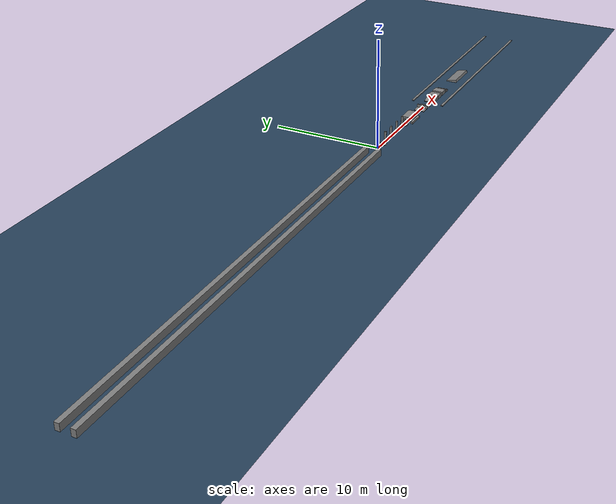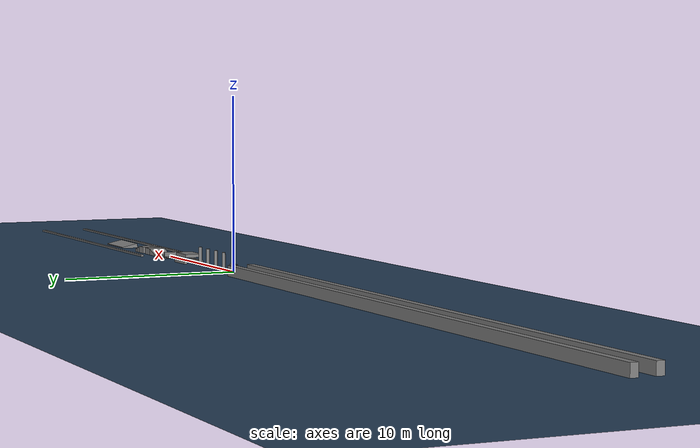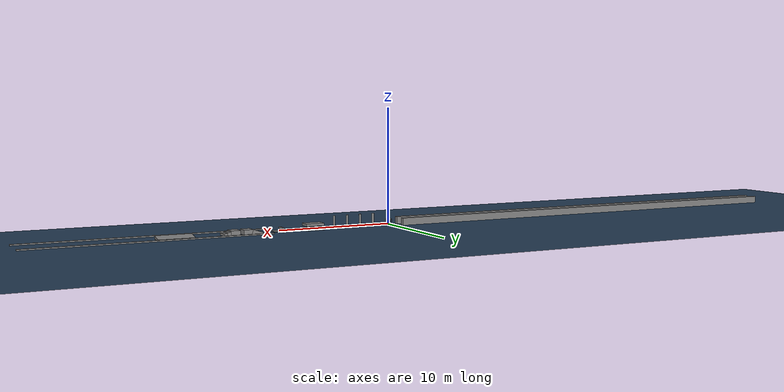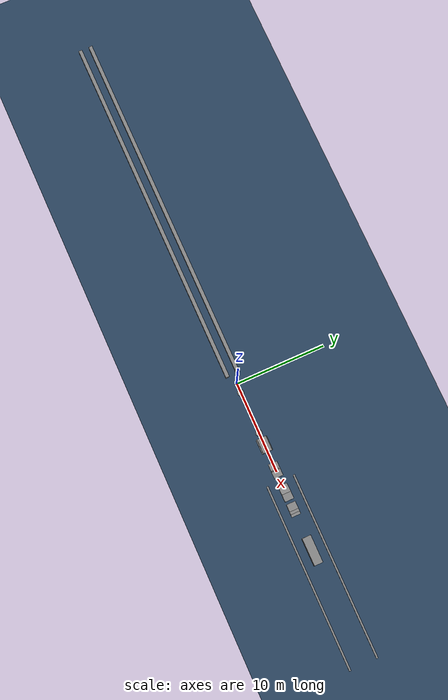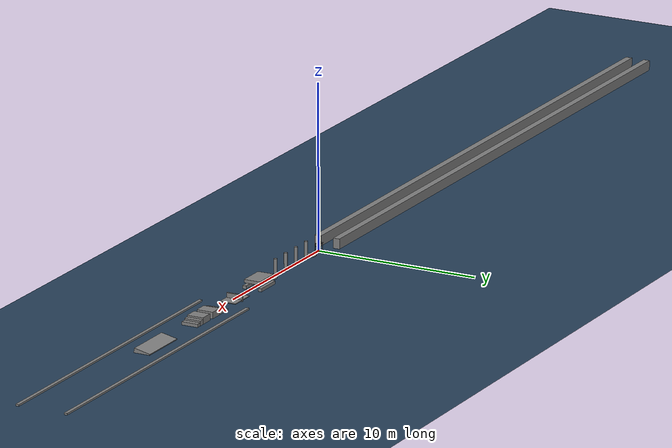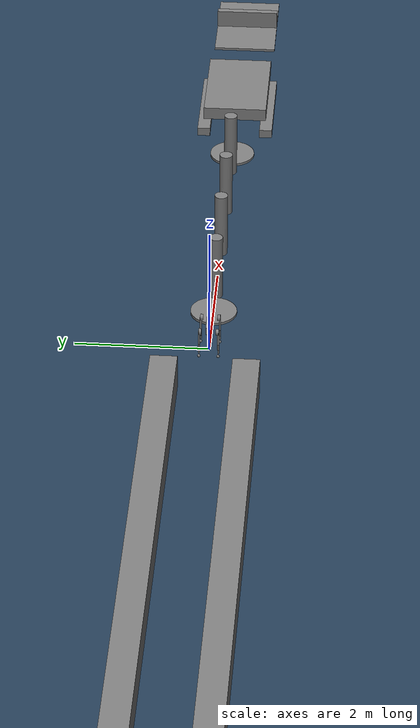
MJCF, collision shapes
<mujoco model="go2 scene">
  <include file="go2.xml"/>

  <statistic center="0 0 0.1" extent="0.8"/>

  <visual>
    <headlight diffuse="0.6 0.6 0.6" ambient="0.3 0.3 0.3" specular="0 0 0"/>
    <rgba haze="0.15 0.25 0.35 1"/>
    <global azimuth="-130" elevation="-20"/>
  </visual>

  <asset>
    <texture type="skybox" builtin="gradient" rgb1="0.3 0.5 0.7" rgb2="0 0 0" width="512" height="3072"/>
    <texture type="2d" name="groundplane" builtin="checker" mark="edge" rgb1="0.2 0.3 0.4" rgb2="0.1 0.2 0.3"
      markrgb="0.8 0.8 0.8" width="300" height="300"/>
    <material name="groundplane" texture="groundplane" texuniform="true" texrepeat="5 5" reflectance="0.2"/>

  </asset>

  <worldbody>
    <light pos="0 0 1.5" dir="0 0 -1" directional="true"/>
    <geom name="floor" size="0 0 0.05" type="plane" material="groundplane"/>
    <!-- 场地 -->
    <geom pos="-21 0.6 0.04" type="box"  size="20 0.2 0.5" quat="1.0 0 0 0"/>
    <geom pos="-21 -0.6 0.04" type="box"  size="20 0.2 0.5" quat="1.0 0 0 0"/>
    <geom pos="21 1.5 0.04" type="box"  size="10 0.1 0.05" quat="1.0 0 0 0"/>
    <geom pos="21 -1.5 0.04" type="box"  size="10 0.1 0.05" quat="1.0 0 0 0"/>
    <!-- 竖杆 -->
    <geom pos="1 0 0.02" type="cylinder"  size="0.35 0.02" quat="1.0 0 0 0"/>
    <geom pos="1.5 0 0.02" type="cylinder"  size="0.1 1." quat="1.0 0 0 0"/>
    <geom pos="2.7 0 0.02" type="cylinder"  size="0.1 1." quat="1.0 0 0 0"/>
    <geom pos="3.9 0 0.02" type="cylinder"  size="0.1 1." quat="1.0 0 0 0"/>
    <geom pos="5.1 0 0.02" type="cylinder"  size="0.1 1." quat="1.0 0 0 0"/>
    <geom pos="5.6 0 0.02" type="cylinder"  size="0.35 0.02" quat="1.0 0 0 0"/>
    <!-- 匍匐架 -->
    <geom pos="7 0.5 0.02" type="box"  size="0.8 0.1 0.1" quat="1.0 0 0 0"/>
    <geom pos="7 0 0.4" type="box"  size="0.8 0.5 0.1" quat="1.0 0 0 0"/>
    <geom pos="7 -0.5 0.02" type="box"  size="0.8 0.1 0.1" quat="1.0 0 0 0"/>
    <!-- 高墙 -->
    <geom pos="9.8 0 0.02" type="box"  size="0.8 0.5 0.02" quat="1.0 0 0 0"/>
    <geom pos="9.8 0 0.02" type="box"  size="0.05 0.5 0.3" quat="1.0 0 0 0"/>
    <!-- 断桥 -->
    <geom pos="12. 0 -0.025" type="box"  size="0.5 0.5 0.2" quat="0.9848 0 -0.1604 0"/>
    <geom pos="12.8 0 0.02" type="box"  size="0.4 0.5 0.3" quat="1.0 0 0 0"/>
    <geom pos="13.9 0 0.02" type="box"  size="0.4 0.5 0.3" quat="1.0 0 0 0"/>
    <geom pos="14.45 0 0.02" type="box"  size="0.15 0.5 0.2" quat="1.0 0 0 0"/>
    <geom pos="14.75 0 0.02" type="box"  size="0.15 0.5 0.1" quat="1.0 0 0 0"/>

    <geom pos="18.75 0.01 -0.07" type="box"  size="1.5 0.5 0.17" quat="0.9945 -0.1045 0 0"/>
  </worldbody>
</mujoco>

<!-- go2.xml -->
<mujoco model="go2">
  <compiler angle="radian" meshdir="assets" autolimits="true" />

  <option cone="elliptic" impratio="100" />

  <default>
    <default class="go2">
      <geom friction="0.4" margin="0.001" condim="1"/>
      <joint axis="0 1 0" damping="0.1" armature="0.01" frictionloss="0.2"/>
      <motor ctrlrange="-23.7 23.7"/>
      <default class="abduction">
        <joint axis="1 0 0" range="-1.0472 1.0472"/>
      </default>
      <default class="hip">
        <default class="front_hip">
          <joint range="-1.5708 3.4907"/>
        </default>
        <default class="back_hip">
          <joint range="-0.5236 4.5379"/>
        </default>
      </default>
      <default class="knee">
        <joint range="-2.7227 -0.83776"/>
        <motor ctrlrange="-45.43 45.43"/>
      </default>
      <default class="visual">
        <geom type="mesh" contype="0" conaffinity="0" group="2"/>
      </default>
      <default class="collision">
        <geom group="3"/>
        <default class="foot">
          <geom size="0.022" pos="-0.002 0 -0.213" priority="1" condim="6"
            friction="0.4 0.02 0.01"/>
        </default>
      </default>
    </default>
  </default>

  <asset>
    <material name="metal" rgba=".9 .95 .95 1" />
    <material name="black" rgba="0 0 0 1" />
    <material name="white" rgba="1 1 1 1" />
    <material name="gray" rgba="0.671705 0.692426 0.774270 1" />

    <mesh file="base_0.obj" />
    <mesh file="base_1.obj" />
    <mesh file="base_2.obj" />
    <mesh file="base_3.obj" />
    <mesh file="base_4.obj" />
    <mesh file="hip_0.obj" />
    <mesh file="hip_1.obj" />
    <mesh file="thigh_0.obj" />
    <mesh file="thigh_1.obj" />
    <mesh file="thigh_mirror_0.obj" />
    <mesh file="thigh_mirror_1.obj" />
    <mesh file="calf_0.obj" />
    <mesh file="calf_1.obj" />
    <mesh file="calf_mirror_0.obj" />
    <mesh file="calf_mirror_1.obj" />
    <mesh file="foot.obj" />
  </asset>

  <worldbody>
    <body name="base_link" pos="0 0 0.445" childclass="go2">
      <inertial pos="0.021112 0 -0.005366" quat="-0.000543471 0.713435 -0.00173769 0.700719"
        mass="3.921"
        diaginertia="0.107027 0.0980771 0.0244531" />
      <freejoint />
      <geom mesh="base_0" material="black" class="visual" />
      <geom mesh="base_1" material="black" class="visual" />
      <geom mesh="base_2" material="black" class="visual" />
      <geom mesh="base_3" material="white" class="visual" />
      <geom mesh="base_4" material="gray" class="visual" />
      <geom size="0.1881 0.04675 0.057" type="box" class="collision" />
      <geom size="0.05 0.045" pos="0.285 0 0.01" type="cylinder" class="collision" />
      <geom size="0.047" pos="0.293 0 -0.06" class="collision" />
      <site name='imu' size='0.01' pos='0.0 0 0.0'/>
      <body name="FL_hip" pos="0.1934 0.0465 0">
        <inertial pos="-0.0054 0.00194 -0.000105" quat="0.497014 0.499245 0.505462 0.498237"
          mass="0.678"
          diaginertia="0.00088403 0.000596003 0.000479967" />
        <joint name="FL_hip_joint" class="abduction" />
        <geom mesh="hip_0" material="metal" class="visual" />
        <geom mesh="hip_1" material="gray" class="visual" />
        <geom size="0.046 0.02" pos="0 0.08 0" quat="1 1 0 0" type="cylinder" class="collision" />
        <body name="FL_thigh" pos="0 0.0955 0">
          <inertial pos="-0.00374 -0.0223 -0.0327" quat="0.829533 0.0847635 -0.0200632 0.551623"
            mass="1.152"
            diaginertia="0.00594973 0.00584149 0.000878787" />
          <joint name="FL_thigh_joint" class="front_hip" />
          <geom mesh="thigh_0" material="metal" class="visual" />
          <geom mesh="thigh_1" material="gray" class="visual" />
          <geom size="0.1065 0.01225 0.017" pos="0 0 -0.1065" quat="0.707107 0 0.707107 0"
            type="box" class="collision" />
          <body name="FL_calf" pos="0 0 -0.213">
            <inertial pos="0.00629595 -0.000622121 -0.141417"
              quat="0.710672 0.00154099 -0.00450087 0.703508"
              mass="0.241352" diaginertia="0.0014901 0.00146356 5.31397e-05" />
            <joint name="FL_calf_joint" class="knee" />
            <geom mesh="calf_0" material="gray" class="visual" />
            <geom mesh="calf_1" material="black" class="visual" />
            <geom size="0.012 0.06" pos="0.008 0 -0.06" quat="0.994493 0 -0.104807 0"
              type="cylinder" class="collision" />
            <geom size="0.011 0.0325" pos="0.02 0 -0.148" quat="0.999688 0 0.0249974 0"
              type="cylinder" class="collision" />
            <geom pos="0 0 -0.213" mesh="foot" class="visual" material="black" />
            <geom name="FL" class="foot" />
            <body name="FL_foot" pos="0 0 -0.213" />
          </body>
        </body>
      </body>
      <body name="FR_hip" pos="0.1934 -0.0465 0">
        <inertial pos="-0.0054 -0.00194 -0.000105" quat="0.498237 0.505462 0.499245 0.497014"
          mass="0.678"
          diaginertia="0.00088403 0.000596003 0.000479967" />
        <joint name="FR_hip_joint" class="abduction" />
        <geom mesh="hip_0" material="metal" class="visual" quat="4.63268e-05 1 0 0" />
        <geom mesh="hip_1" material="gray" class="visual" quat="4.63268e-05 1 0 0" />
        <geom size="0.046 0.02" pos="0 -0.08 0" quat="0.707107 0.707107 0 0" type="cylinder"
          class="collision" />
        <body name="FR_thigh" pos="0 -0.0955 0">
          <inertial pos="-0.00374 0.0223 -0.0327" quat="0.551623 -0.0200632 0.0847635 0.829533"
            mass="1.152"
            diaginertia="0.00594973 0.00584149 0.000878787" />
          <joint name="FR_thigh_joint" class="front_hip" />
          <geom mesh="thigh_mirror_0" material="metal" class="visual" />
          <geom mesh="thigh_mirror_1" material="gray" class="visual" />
          <geom size="0.1065 0.01225 0.017" pos="0 0 -0.1065" quat="0.707107 0 0.707107 0"
            type="box" class="collision" />
          <body name="FR_calf" pos="0 0 -0.213">
            <inertial pos="0.00629595 0.000622121 -0.141417"
              quat="0.703508 -0.00450087 0.00154099 0.710672"
              mass="0.241352" diaginertia="0.0014901 0.00146356 5.31397e-05" />
            <joint name="FR_calf_joint" class="knee" />
            <geom mesh="calf_mirror_0" material="gray" class="visual" />
            <geom mesh="calf_mirror_1" material="black" class="visual" />
            <geom size="0.013 0.06" pos="0.01 0 -0.06" quat="0.995004 0 -0.0998334 0"
              type="cylinder" class="collision" />
            <geom size="0.011 0.0325" pos="0.02 0 -0.148" quat="0.999688 0 0.0249974 0"
              type="cylinder" class="collision" />
            <geom pos="0 0 -0.213" mesh="foot" class="visual" material="black" />
            <geom name="FR" class="foot" />
            <body name="FR_foot" pos="0 0 -0.213" />
          </body>
        </body>
      </body>
      <body name="RL_hip" pos="-0.1934 0.0465 0">
        <inertial pos="0.0054 0.00194 -0.000105" quat="0.505462 0.498237 0.497014 0.499245"
          mass="0.678"
          diaginertia="0.00088403 0.000596003 0.000479967" />
        <joint name="RL_hip_joint" class="abduction" />
        <geom mesh="hip_0" material="metal" class="visual" quat="4.63268e-05 0 1 0" />
        <geom mesh="hip_1" material="gray" class="visual" quat="4.63268e-05 0 1 0" />
        <geom size="0.046 0.02" pos="0 0.08 0" quat="0.707107 0.707107 0 0" type="cylinder"
          class="collision" />
        <body name="RL_thigh" pos="0 0.0955 0">
          <inertial pos="-0.00374 -0.0223 -0.0327" quat="0.829533 0.0847635 -0.0200632 0.551623"
            mass="1.152"
            diaginertia="0.00594973 0.00584149 0.000878787" />
          <joint name="RL_thigh_joint" class="back_hip" />
          <geom mesh="thigh_0" material="metal" class="visual" />
          <geom mesh="thigh_1" material="gray" class="visual" />
          <geom size="0.1065 0.01225 0.017" pos="0 0 -0.1065" quat="0.707107 0 0.707107 0"
            type="box" class="collision" />
          <body name="RL_calf" pos="0 0 -0.213">
            <inertial pos="0.00629595 -0.000622121 -0.141417"
              quat="0.710672 0.00154099 -0.00450087 0.703508"
              mass="0.241352" diaginertia="0.0014901 0.00146356 5.31397e-05" />
            <joint name="RL_calf_joint" class="knee" />
            <geom mesh="calf_0" material="gray" class="visual" />
            <geom mesh="calf_1" material="black" class="visual" />
            <geom size="0.013 0.06" pos="0.01 0 -0.06" quat="0.995004 0 -0.0998334 0"
              type="cylinder" class="collision" />
            <geom size="0.011 0.0325" pos="0.02 0 -0.148" quat="0.999688 0 0.0249974 0"
              type="cylinder" class="collision" />
            <geom pos="0 0 -0.213" mesh="foot" class="visual" material="black" />
            <geom name="RL" class="foot" />
            <body name="RL_foot" pos="0 0 -0.213" />
          </body>
        </body>
      </body>
       <body name="RR_hip" pos="-0.1934 -0.0465 0">
        <inertial pos="0.0054 -0.00194 -0.000105" quat="0.499245 0.497014 0.498237 0.505462"
          mass="0.678"
          diaginertia="0.00088403 0.000596003 0.000479967" />
        <joint name="RR_hip_joint" class="abduction" />
        <geom mesh="hip_0" material="metal" class="visual"
          quat="2.14617e-09 4.63268e-05 4.63268e-05 -1" />
        <geom mesh="hip_1" material="gray" class="visual"
          quat="2.14617e-09 4.63268e-05 4.63268e-05 -1" />
        <geom size="0.046 0.02" pos="0 -0.08 0" quat="0.707107 0.707107 0 0" type="cylinder"
          class="collision" />
        <body name="RR_thigh" pos="0 -0.0955 0">
          <inertial pos="-0.00374 0.0223 -0.0327" quat="0.551623 -0.0200632 0.0847635 0.829533"
            mass="1.152"
            diaginertia="0.00594973 0.00584149 0.000878787" />
          <joint name="RR_thigh_joint" class="back_hip" />
          <geom mesh="thigh_mirror_0" material="metal" class="visual" />
          <geom mesh="thigh_mirror_1" material="gray" class="visual" />
          <geom size="0.1065 0.01225 0.017" pos="0 0 -0.1065" quat="0.707107 0 0.707107 0"
            type="box" class="collision" />
          <body name="RR_calf" pos="0 0 -0.213">
            <inertial pos="0.00629595 0.000622121 -0.141417"
              quat="0.703508 -0.00450087 0.00154099 0.710672"
              mass="0.241352" diaginertia="0.0014901 0.00146356 5.31397e-05" />
            <joint name="RR_calf_joint" class="knee" />
            <geom mesh="calf_mirror_0" material="gray" class="visual" />
            <geom mesh="calf_mirror_1" material="black" class="visual" />
            <geom size="0.013 0.06" pos="0.01 0 -0.06" quat="0.995004 0 -0.0998334 0"
              type="cylinder" class="collision" />
            <geom size="0.011 0.0325" pos="0.02 0 -0.148" quat="0.999688 0 0.0249974 0"
              type="cylinder" class="collision" />
            <geom pos="0 0 -0.213" mesh="foot" class="visual" material="black" />
            <geom name="RR" class="foot" />
            <body name="RR_foot" pos="0 0 -0.213" />
          </body>
        </body>
      </body>
    </body>
  </worldbody>

  <actuator>

    <motor name="FL_hip_joint" joint="FL_hip_joint" gear="1" ctrllimited="true" ctrlrange="-12 12"/>
		<motor name="FL_thigh_joint" joint="FL_thigh_joint" gear="1" ctrllimited="true" ctrlrange="-12 12"/>
		<motor name="FL_calf_joint" joint="FL_calf_joint" gear="1" ctrllimited="true" ctrlrange="-12 12"/>

		<motor name="FR_hip_joint" joint="FR_hip_joint" gear="1" ctrllimited="true" ctrlrange="-12 12"/>
		<motor name="FR_thigh_joint" joint="FR_thigh_joint" gear="1" ctrllimited="true" ctrlrange="-12 12"/>
		<motor name="FR_calf_joint" joint="FR_calf_joint" gear="1" ctrllimited="true" ctrlrange="-12 12"/>

    <motor name="RL_hip_joint" joint="RL_hip_joint" gear="1" ctrllimited="true" ctrlrange="-12 12"/>
		<motor name="RL_thigh_joint" joint="RL_thigh_joint" gear="1" ctrllimited="true" ctrlrange="-12 12"/>
		<motor name="RL_calf_joint" joint="RL_calf_joint" gear="1" ctrllimited="true" ctrlrange="-12 12"/>

		<motor name="RR_hip_joint" joint="RR_hip_joint" gear="1" ctrllimited="true" ctrlrange="-12 12"/>
		<motor name="RR_thigh_joint" joint="RR_thigh_joint" gear="1" ctrllimited="true" ctrlrange="-12 12"/>
		<motor name="RR_calf_joint" joint="RR_calf_joint" gear="1" ctrllimited="true" ctrlrange="-12 12"/>

  </actuator>
  <sensor>
    <jointpos name="FL_hip_pos" joint="FL_hip_joint" />
    <jointpos name="FL_thigh_pos" joint="FL_thigh_joint" />
    <jointpos name="FL_calf_pos" joint="FL_calf_joint" />
    <jointpos name="FR_hip_pos" joint="FR_hip_joint" />
    <jointpos name="FR_thigh_pos" joint="FR_thigh_joint" />
    <jointpos name="FR_calf_pos" joint="FR_calf_joint" />
    <jointpos name="RL_hip_pos" joint="RL_hip_joint" />
    <jointpos name="RL_thigh_pos" joint="RL_thigh_joint" />
    <jointpos name="RL_calf_pos" joint="RL_calf_joint" />
    <jointpos name="RR_hip_pos" joint="RR_hip_joint" />
    <jointpos name="RR_thigh_pos" joint="RR_thigh_joint" />
    <jointpos name="RR_calf_pos" joint="RR_calf_joint" />

    <jointvel name="FL_hip_vel" joint="FL_hip_joint" />
    <jointvel name="FL_thigh_vel" joint="FL_thigh_joint" />
    <jointvel name="FL_calf_vel" joint="FL_calf_joint" />
    <jointvel name="FR_hip_vel" joint="FR_hip_joint" />
    <jointvel name="FR_thigh_vel" joint="FR_thigh_joint" />
    <jointvel name="FR_calf_vel" joint="FR_calf_joint" />
    <jointvel name="RL_hip_vel" joint="RL_hip_joint" />
    <jointvel name="RL_thigh_vel" joint="RL_thigh_joint" />
    <jointvel name="RL_calf_vel" joint="RL_calf_joint" />
    <jointvel name="RR_hip_vel" joint="RR_hip_joint" />
    <jointvel name="RR_thigh_vel" joint="RR_thigh_joint" />
    <jointvel name="RR_calf_vel" joint="RR_calf_joint" />

    <jointactuatorfrc name="FL_hip_torque" joint="FL_hip_joint" noise="0.01" />
    <jointactuatorfrc name="FL_thigh_torque" joint="FL_thigh_joint" noise="0.01" />
    <jointactuatorfrc name="FL_calf_torque" joint="FL_calf_joint" noise="0.01" />
    <jointactuatorfrc name="FR_hip_torque" joint="FR_hip_joint" noise="0.01" />
    <jointactuatorfrc name="FR_thigh_torque" joint="FR_thigh_joint" noise="0.01" />
    <jointactuatorfrc name="FR_calf_torque" joint="FR_calf_joint" noise="0.01" />
    <jointactuatorfrc name="RL_hip_torque" joint="RL_hip_joint" noise="0.01" />
    <jointactuatorfrc name="RL_thigh_torque" joint="RL_thigh_joint" noise="0.01" />
    <jointactuatorfrc name="RL_calf_torque" joint="RL_calf_joint" noise="0.01" />

    <jointactuatorfrc name="RR_hip_torque" joint="RR_hip_joint" noise="0.01" />
    <jointactuatorfrc name="RR_thigh_torque" joint="RR_thigh_joint" noise="0.01" />
    <jointactuatorfrc name="RR_calf_torque" joint="RR_calf_joint" noise="0.01" />

    <framequat     name='orientation' objtype='site' noise='0.001' objname='imu'/>
    <framepos      name='position' objtype='site' noise='0.001' objname='imu'/>
    <framelinvel  name="base_lin_vel" objtype="site" objname="imu" />
    <gyro          name='angular-velocity'    site='imu' noise='0.005' cutoff='34.9'/>
    <velocimeter   name='linear-velocity'     site='imu' noise='0.001' cutoff='30'/>
    <accelerometer name='linear-acceleration' site='imu' noise='0.005' cutoff='157'/>
    <magnetometer  name='magnetometer'        site='imu'/>

  </sensor>

  <keyframe>
    <key name="home" qpos="0 0 0.27 1 0 0 0 0 0.9 -1.8 0 0.9 -1.8 0 0.9 -1.8 0 0.9 -1.8"
      ctrl="0 0.9 -1.8 0 0.9 -1.8 0 0.9 -1.8 0 0.9 -1.8" />
  </keyframe>
</mujoco>
